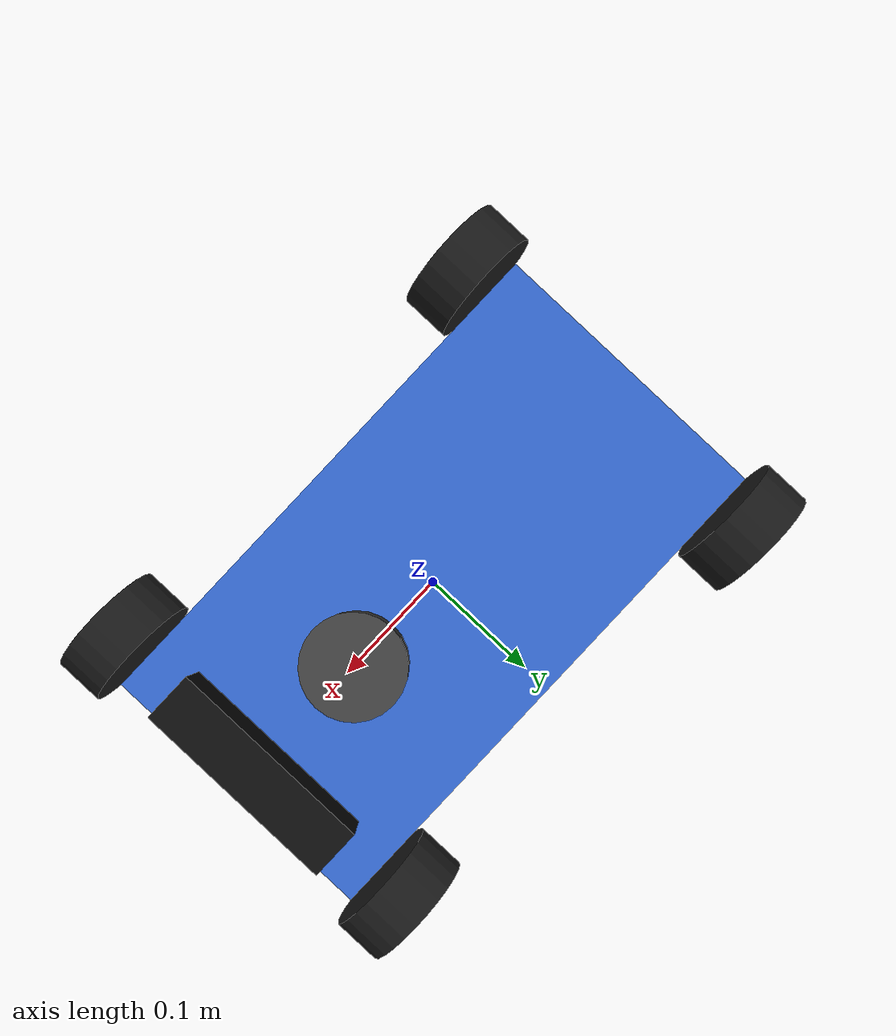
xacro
<?xml version="1.0"?>
<!-- Examen Robótica Móvil — Robot Mecanum + RPLIDAR A3 + Orbbec Astra
     VARIANTE D
     Validar:  xacro mi_robot.urdf.xacro > /tmp/check.urdf && echo OK -->
<robot name="mi_robot" xmlns:xacro="http://www.ros.org/wiki/xacro">

  <!-- ===================== Parámetros de la variante D ===================== -->
  <xacro:property name="rueda_radio" value="0.050"/>
  <xacro:property name="distancia_ejes" value="0.40"/>       <!-- wheelbase (m) -->
  <xacro:property name="separacion_ruedas" value="0.30"/>    <!-- track (m) -->
  <xacro:property name="lx" value="${distancia_ejes / 2.0}"/>
  <xacro:property name="ly" value="${separacion_ruedas / 2.0}"/>
  <xacro:property name="rueda_ancho" value="0.04"/>
  <xacro:property name="rueda_masa" value="0.3"/>

  <!-- Chasis (dado) -->
  <xacro:property name="chasis_largo" value="${distancia_ejes + 0.04}"/>
  <xacro:property name="chasis_ancho" value="${separacion_ruedas - rueda_ancho - 0.02}"/>
  <xacro:property name="chasis_alto" value="0.05"/>
  <xacro:property name="chasis_masa" value="3.0"/>

  <!-- ===================== Sensores: variante D + hojas de datos ===================== -->
  <!-- RPLIDAR A3 (Slamtec): 76 mm x 41 mm, 190 g, rango 0.2 m – 20 m (modo Outdoor),
       10 000 muestras/s en Outdoor, barrido 8 Hz (variante D) -> 10000/8 = 1250 muestras/vuelta -->
  <xacro:property name="lidar_radio" value="0.038"/>
  <xacro:property name="lidar_alto" value="0.041"/>
  <xacro:property name="lidar_masa" value="0.19"/>
  <xacro:property name="lidar_x" value="0.08"/>
  <xacro:property name="lidar_z" value="0.12"/>
  <xacro:property name="lidar_hz" value="8"/>
  <xacro:property name="lidar_muestras" value="1250"/>
  <xacro:property name="lidar_rmin" value="0.2"/>
  <xacro:property name="lidar_rmax" value="20.0"/>

  <!-- Orbbec Astra (no S): 165 x 40 x 48 mm (ancho x prof. x alto), 310 g,
       profundidad 0.6 m – 8 m, FOV prof. 58.4° H, 640x480 @ 30 fps -->
  <xacro:property name="cam_prof" value="0.040"/>
  <xacro:property name="cam_ancho" value="0.165"/>
  <xacro:property name="cam_alto" value="0.048"/>
  <xacro:property name="cam_masa" value="0.31"/>
  <xacro:property name="cam_x" value="0.19"/>
  <xacro:property name="cam_z" value="0.08"/>
  <xacro:property name="cam_fov" value="${58.4 * pi / 180.0}"/>
  <xacro:property name="cam_near" value="0.6"/>
  <xacro:property name="cam_far" value="8.0"/>

  <!-- ===================== Inercias (dadas) ===================== -->
  <xacro:macro name="inercia_caja" params="m x y z">
    <inertia ixx="${m*(y*y + z*z)/12.0}" ixy="0" ixz="0"
             iyy="${m*(x*x + z*z)/12.0}" iyz="0"
             izz="${m*(x*x + y*y)/12.0}"/>
  </xacro:macro>
  <!-- Cilindro con eje a lo largo de z local -->
  <xacro:macro name="inercia_cilindro" params="m r h">
    <inertia ixx="${m*(3*r*r + h*h)/12.0}" ixy="0" ixz="0"
             iyy="${m*(3*r*r + h*h)/12.0}" iyz="0"
             izz="${m*r*r/2.0}"/>
  </xacro:macro>

  <!-- ===================== Chasis (dado) ===================== -->
  <link name="base_link">
    <visual>
      <origin xyz="0 0 0.02" rpy="0 0 0"/>
      <geometry><box size="${chasis_largo} ${chasis_ancho} ${chasis_alto}"/></geometry>
      <material name="azul"><color rgba="0.2 0.4 0.8 1"/></material>
    </visual>
    <collision>
      <origin xyz="0 0 0.02" rpy="0 0 0"/>
      <geometry><box size="${chasis_largo} ${chasis_ancho} ${chasis_alto}"/></geometry>
    </collision>
    <inertial>
      <origin xyz="0 0 0.02" rpy="0 0 0"/>
      <mass value="${chasis_masa}"/>
      <xacro:inercia_caja m="${chasis_masa}" x="${chasis_largo}" y="${chasis_ancho}" z="${chasis_alto}"/>
    </inertial>
  </link>

  <!-- ===================== Ruedas (Parte 1) ===================== -->
  <xacro:macro name="rueda" params="prefijo x_signo y_signo">
    <link name="rueda_${prefijo}">
      <visual>
        <geometry><cylinder radius="${rueda_radio}" length="${rueda_ancho}"/></geometry>
        <material name="negro"><color rgba="0.1 0.1 0.1 1"/></material>
      </visual>
      <collision>
        <geometry><sphere radius="${rueda_radio}"/></geometry>
      </collision>
      <inertial>
        <origin xyz="0 0 0" rpy="0 0 0"/>
        <mass value="${rueda_masa}"/>
        <xacro:inercia_cilindro m="${rueda_masa}" r="${rueda_radio}" h="${rueda_ancho}"/>
      </inertial>
    </link>

    <joint name="joint_rueda_${prefijo}" type="continuous">
      <parent link="base_link"/>
      <child link="rueda_${prefijo}"/>
      <origin xyz="${x_signo*lx} ${y_signo*ly} 0" rpy="${-pi/2} 0 0"/>
      <axis xyz="0 0 1"/>
    </joint>
  </xacro:macro>

  <xacro:rueda prefijo="del_izq" x_signo="1"  y_signo="1"/>
  <xacro:rueda prefijo="del_der" x_signo="1"  y_signo="-1"/>
  <xacro:rueda prefijo="tra_izq" x_signo="-1" y_signo="1"/>
  <xacro:rueda prefijo="tra_der" x_signo="-1" y_signo="-1"/>

  <!-- ===================== RPLIDAR A3 (Parte 2) ===================== -->
  <link name="lidar_link">
    <visual>
      <geometry><cylinder radius="${lidar_radio}" length="${lidar_alto}"/></geometry>
      <material name="gris"><color rgba="0.25 0.25 0.25 1"/></material>
    </visual>
    <collision>
      <geometry><cylinder radius="${lidar_radio}" length="${lidar_alto}"/></geometry>
    </collision>
    <inertial>
      <origin xyz="0 0 0" rpy="0 0 0"/>
      <mass value="${lidar_masa}"/>
      <xacro:inercia_cilindro m="${lidar_masa}" r="${lidar_radio}" h="${lidar_alto}"/>
    </inertial>
  </link>

  <joint name="joint_lidar" type="fixed">
    <parent link="base_link"/>
    <child link="lidar_link"/>
    <origin xyz="${lidar_x} 0 ${lidar_z}" rpy="0 0 0"/>
  </joint>

  <gazebo reference="lidar_link">
    <sensor name="rplidar_a3" type="gpu_lidar">
      <topic>/scan</topic>
      <gz_frame_id>lidar_link</gz_frame_id>
      <update_rate>${lidar_hz}</update_rate>
      <always_on>1</always_on>
      <visualize>true</visualize>
      <lidar>
        <scan>
          <horizontal>
            <samples>${lidar_muestras}</samples>          <!-- muestras por vuelta -->
            <resolution>1</resolution>
            <min_angle>${-pi}</min_angle>
            <max_angle>${pi}</max_angle>
          </horizontal>
        </scan>
        <range>
          <min>${lidar_rmin}</min>
          <max>${lidar_rmax}</max>
          <resolution>0.01</resolution>
        </range>
        <noise>
          <type>gaussian</type>
          <mean>0.0</mean>
          <stddev>0.01</stddev>
        </noise>
      </lidar>
    </sensor>
  </gazebo>

  <!-- ===================== Orbbec Astra (Parte 2) ===================== -->
  <link name="camara_link">
    <visual>
      <geometry><box size="${cam_prof} ${cam_ancho} ${cam_alto}"/></geometry>
      <material name="negro_cam"><color rgba="0.05 0.05 0.05 1"/></material>
    </visual>
    <collision>
      <geometry><box size="${cam_prof} ${cam_ancho} ${cam_alto}"/></geometry>
    </collision>
    <inertial>
      <origin xyz="0 0 0" rpy="0 0 0"/>
      <mass value="${cam_masa}"/>
      <xacro:inercia_caja m="${cam_masa}" x="${cam_prof}" y="${cam_ancho}" z="${cam_alto}"/>
    </inertial>
  </link>

  <joint name="joint_camara" type="fixed">
    <parent link="base_link"/>
    <child link="camara_link"/>
    <origin xyz="${cam_x} 0 ${cam_z}" rpy="0 0 0"/>
  </joint>

  <link name="camara_optica_link"/>

  <joint name="joint_camara_optica" type="fixed">
    <parent link="camara_link"/>
    <child link="camara_optica_link"/>
    <origin xyz="0 0 0" rpy="${-pi/2} 0 ${-pi/2}"/>
  </joint>

  <gazebo reference="camara_link">
    <sensor name="astra" type="rgbd_camera">
      <topic>/camara</topic>
      <gz_frame_id>camara_link</gz_frame_id>
      <update_rate>30</update_rate>
      <always_on>1</always_on>
      <camera>
        <horizontal_fov>${cam_fov}</horizontal_fov>   <!-- en radianes -->
        <image>
          <width>640</width>
          <height>480</height>
          <format>R8G8B8</format>
        </image>
        <clip>
          <near>${cam_near}</near>
          <far>${cam_far}</far>
        </clip>
        <depth_camera>
          <clip>
            <near>${cam_near}</near>
            <far>${cam_far}</far>
          </clip>
        </depth_camera>
      </camera>
    </sensor>
  </gazebo>

  <!-- ===================== Plugins de Gazebo (Parte 1) ===================== -->
  <xacro:macro name="motor" params="prefijo">
    <plugin filename="gz-sim-joint-controller-system" name="gz::sim::systems::JointController">
      <joint_name>joint_rueda_${prefijo}</joint_name>
      <use_force_commands>false</use_force_commands>
      <topic>/vel_rueda_${prefijo}</topic>
    </plugin>
  </xacro:macro>

  <gazebo>
    <xacro:motor prefijo="del_izq"/>
    <xacro:motor prefijo="del_der"/>
    <xacro:motor prefijo="tra_izq"/>
    <xacro:motor prefijo="tra_der"/>

    <!-- Encoders: publica /world/pista/model/mi_robot/joint_state -->
    <plugin filename="gz-sim-joint-state-publisher-system" name="gz::sim::systems::JointStatePublisher"/>
  </gazebo>

</robot>
